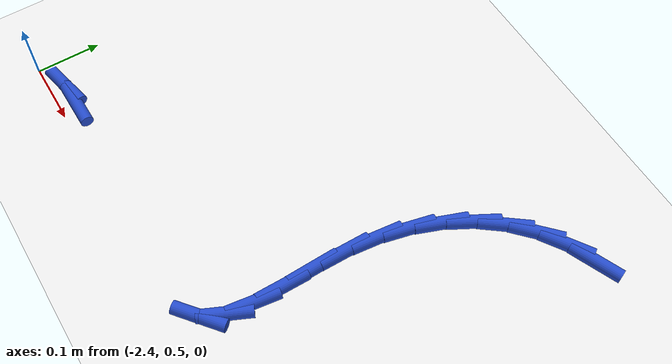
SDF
<sdf version="1.6">
 <world name="default">
  <model name="ground_plane">
   <static>1</static>
   <link name="link">
    <collision name="collision">
     <geometry><plane><normal>0 0 1</normal><size>100 100</size></plane></geometry>
     <surface><friction><ode><mu>100</mu><mu2>50</mu2></ode></friction></surface>
    </collision>
    <visual name="visual">
     <cast_shadows>0</cast_shadows>
     <geometry><plane><normal>0 0 1</normal><size>100 100</size></plane></geometry>
     <material>
      <script><uri>file://media/materials/scripts/gazebo.material</uri><name>Gazebo/WhiteGlow</name></script>
     </material>
    </visual>
   </link>
  </model>
  <model name="line">
   <link name="link_64">
    <pose>-1.6937336424053178 1.0338613969263515 0.01 0 1.57 0.4087035586655578</pose>
    <collision name="collision">
     <geometry><cylinder><radius>0.01</radius><length>0.08</length></cylinder></geometry>
    </collision>
    <visual name="visual">
     <material>
      <script><name>Gazebo/Blue</name><uri>file://media/materials/scripts/gazebo.material</uri></script>
     </material>
     <geometry><cylinder><radius>0.01</radius><length>0.08</length></cylinder></geometry>
    </visual>
   </link>
   <link name="link_65">
    <pose>-1.7355138223160091 1.015766788430497 0.01 0 1.57 0.5885525939330557</pose>
    <collision name="collision">
     <geometry><cylinder><radius>0.01</radius><length>0.08</length></cylinder></geometry>
    </collision>
    <visual name="visual">
     <material>
      <script><name>Gazebo/Blue</name><uri>file://media/materials/scripts/gazebo.material</uri></script>
     </material>
     <geometry><cylinder><radius>0.01</radius><length>0.08</length></cylinder></geometry>
    </visual>
   </link>
   <link name="link_66">
    <pose>-1.772499589632632 0.9910802168153346 0.01 0 1.57 0.7630246642263812</pose>
    <collision name="collision">
     <geometry><cylinder><radius>0.01</radius><length>0.08</length></cylinder></geometry>
    </collision>
    <visual name="visual">
     <material>
      <script><name>Gazebo/Blue</name><uri>file://media/materials/scripts/gazebo.material</uri></script>
     </material>
     <geometry><cylinder><radius>0.01</radius><length>0.08</length></cylinder></geometry>
    </visual>
   </link>
   <link name="link_67">
    <pose>-1.8045308037998133 0.9604511660044308 0.01 0 1.57 0.9263162181386307</pose>
    <collision name="collision">
     <geometry><cylinder><radius>0.01</radius><length>0.08</length></cylinder></geometry>
    </collision>
    <visual name="visual">
     <material>
      <script><name>Gazebo/Blue</name><uri>file://media/materials/scripts/gazebo.material</uri></script>
     </material>
     <geometry><cylinder><radius>0.01</radius><length>0.08</length></cylinder></geometry>
    </visual>
   </link>
   <link name="link_68">
    <pose>-1.83147645927837 0.924596807066074 0.01 0 1.57 1.076942552901359</pose>
    <collision name="collision">
     <geometry><cylinder><radius>0.01</radius><length>0.08</length></cylinder></geometry>
    </collision>
    <visual name="visual">
     <material>
      <script><name>Gazebo/Blue</name><uri>file://media/materials/scripts/gazebo.material</uri></script>
     </material>
     <geometry><cylinder><radius>0.01</radius><length>0.08</length></cylinder></geometry>
    </visual>
   </link>
   <link name="link_69">
    <pose>-1.85320555052912 0.8842343110685533 0.01 0 1.57 1.2155254215041562</pose>
    <collision name="collision">
     <geometry><cylinder><radius>0.01</radius><length>0.08</length></cylinder></geometry>
    </collision>
    <visual name="visual">
     <material>
      <script><name>Gazebo/Blue</name><uri>file://media/materials/scripts/gazebo.material</uri></script>
     </material>
     <geometry><cylinder><radius>0.01</radius><length>0.08</length></cylinder></geometry>
    </visual>
   </link>
   <link name="link_70">
    <pose>-1.869587072012881 0.8400808490801578 0.01 0 1.57 1.3439100613999744</pose>
    <collision name="collision">
     <geometry><cylinder><radius>0.01</radius><length>0.08</length></cylinder></geometry>
    </collision>
    <visual name="visual">
     <material>
      <script><name>Gazebo/Blue</name><uri>file://media/materials/scripts/gazebo.material</uri></script>
     </material>
     <geometry><cylinder><radius>0.01</radius><length>0.08</length></cylinder></geometry>
    </visual>
   </link>
   <link name="link_71">
    <pose>-1.8804900181904727 0.7928535921691755 0.01 0 1.57 1.464434678160777</pose>
    <collision name="collision">
     <geometry><cylinder><radius>0.01</radius><length>0.08</length></cylinder></geometry>
    </collision>
    <visual name="visual">
     <material>
      <script><name>Gazebo/Blue</name><uri>file://media/materials/scripts/gazebo.material</uri></script>
     </material>
     <geometry><cylinder><radius>0.01</radius><length>0.08</length></cylinder></geometry>
    </visual>
   </link>
   <link name="link_72">
    <pose>-1.8857837970560125 0.7432699182240039 0.01 0 1.57 1.564079982801056</pose>
    <collision name="collision">
     <geometry><cylinder><radius>0.01</radius><length>0.08</length></cylinder></geometry>
    </collision>
    <visual name="visual">
     <material>
      <script><name>Gazebo/Blue</name><uri>file://media/materials/scripts/gazebo.material</uri></script>
     </material>
     <geometry><cylinder><radius>0.01</radius><length>0.08</length></cylinder></geometry>
    </visual>
   </link>
   <link name="link_73">
    <pose>-1.886125186742751 0.6924409919874067 0.01 0 1.57 -1.540078916152314</pose>
    <collision name="collision">
     <geometry><cylinder><radius>0.01</radius><length>0.08</length></cylinder></geometry>
    </collision>
    <visual name="visual">
     <material>
      <script><name>Gazebo/Blue</name><uri>file://media/materials/scripts/gazebo.material</uri></script>
     </material>
     <geometry><cylinder><radius>0.01</radius><length>0.08</length></cylinder></geometry>
    </visual>
   </link>
   <link name="link_74">
    <pose>-1.884596517058667 0.6426910675950771 0.01 0 1.57 1.5675614796644997</pose>
    <collision name="collision">
     <geometry><cylinder><radius>0.01</radius><length>0.08</length></cylinder></geometry>
    </collision>
    <visual name="visual">
     <material>
      <script><name>Gazebo/Blue</name><uri>file://media/materials/scripts/gazebo.material</uri></script>
     </material>
     <geometry><cylinder><radius>0.01</radius><length>0.08</length></cylinder></geometry>
    </visual>
   </link>
   <link name="link_75">
    <pose>-1.8847456887462164 0.5965772448351688 0.01 0 1.57 1.4369611390578183</pose>
    <collision name="collision">
     <geometry><cylinder><radius>0.01</radius><length>0.08</length></cylinder></geometry>
    </collision>
    <visual name="visual">
     <material>
      <script><name>Gazebo/Blue</name><uri>file://media/materials/scripts/gazebo.material</uri></script>
     </material>
     <geometry><cylinder><radius>0.01</radius><length>0.08</length></cylinder></geometry>
    </visual>
   </link>
   <link name="link_76">
    <pose>-1.890120602547858 0.5566566234958357 0.01 0 1.57 1.144708801833198</pose>
    <collision name="collision">
     <geometry><cylinder><radius>0.01</radius><length>0.08</length></cylinder></geometry>
    </collision>
    <visual name="visual">
     <material>
      <script><name>Gazebo/Blue</name><uri>file://media/materials/scripts/gazebo.material</uri></script>
     </material>
     <geometry><cylinder><radius>0.01</radius><length>0.08</length></cylinder></geometry>
    </visual>
   </link>
   <link name="link_77">
    <pose>-1.9042687632845596 0.5254860017988661 0.01 0 1.57 0.6869873526866063</pose>
    <collision name="collision">
     <geometry><cylinder><radius>0.01</radius><length>0.08</length></cylinder></geometry>
    </collision>
    <visual name="visual">
     <material>
      <script><name>Gazebo/Blue</name><uri>file://media/materials/scripts/gazebo.material</uri></script>
     </material>
     <geometry><cylinder><radius>0.01</radius><length>0.08</length></cylinder></geometry>
    </visual>
   </link>
   <link name="link_86">
    <pose>-2.3078564951781977 0.5244391148945469 0.01 0 1.57 0.01416124152974675</pose>
    <collision name="collision">
     <geometry><cylinder><radius>0.01</radius><length>0.08</length></cylinder></geometry>
    </collision>
    <visual name="visual">
     <material>
      <script><name>Gazebo/Blue</name><uri>file://media/materials/scripts/gazebo.material</uri></script>
     </material>
     <geometry><cylinder><radius>0.01</radius><length>0.08</length></cylinder></geometry>
    </visual>
   </link>
   <link name="link_87">
    <pose>-2.3455719482991095 0.523904981547851 0.01 0 1.57 0.219819809435065</pose>
    <collision name="collision">
     <geometry><cylinder><radius>0.01</radius><length>0.08</length></cylinder></geometry>
    </collision>
    <visual name="visual">
     <material>
      <script><name>Gazebo/Blue</name><uri>file://media/materials/scripts/gazebo.material</uri></script>
     </material>
     <geometry><cylinder><radius>0.01</radius><length>0.08</length></cylinder></geometry>
    </visual>
   </link>
  </model>
 </world>
</sdf>
